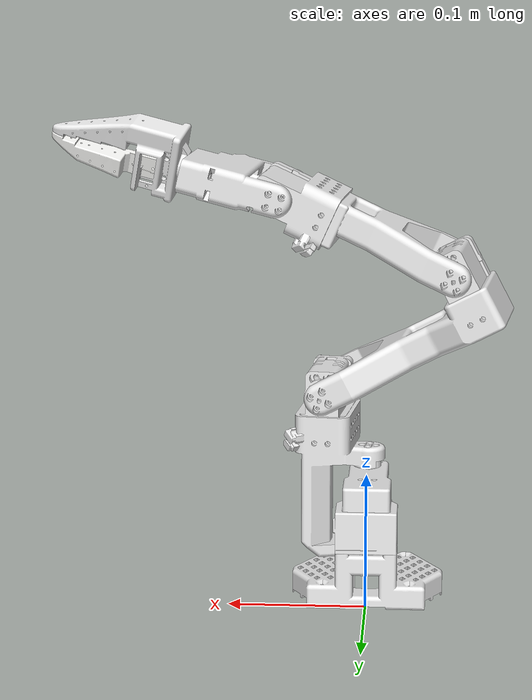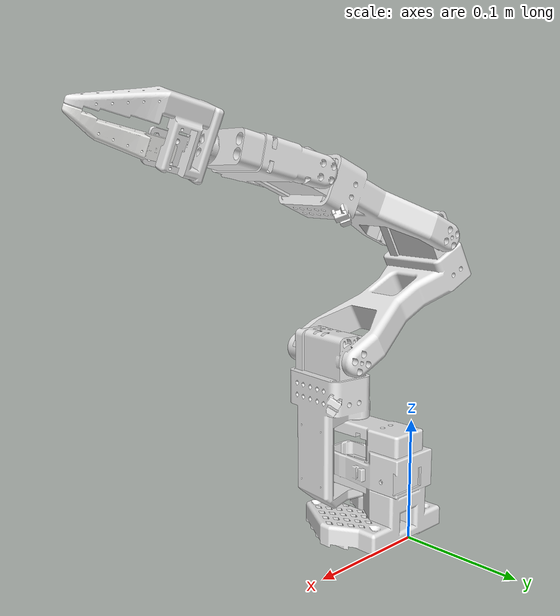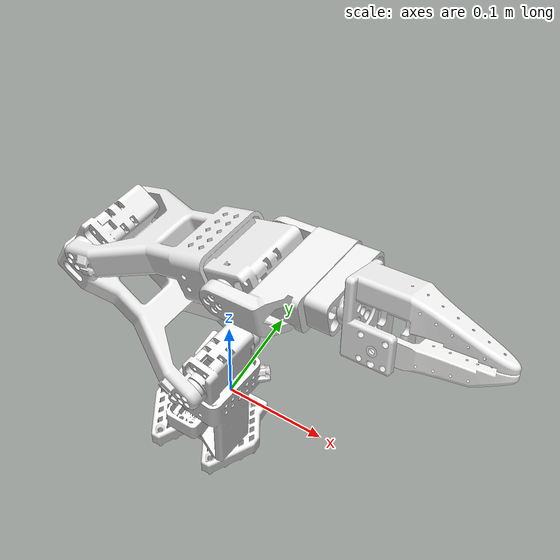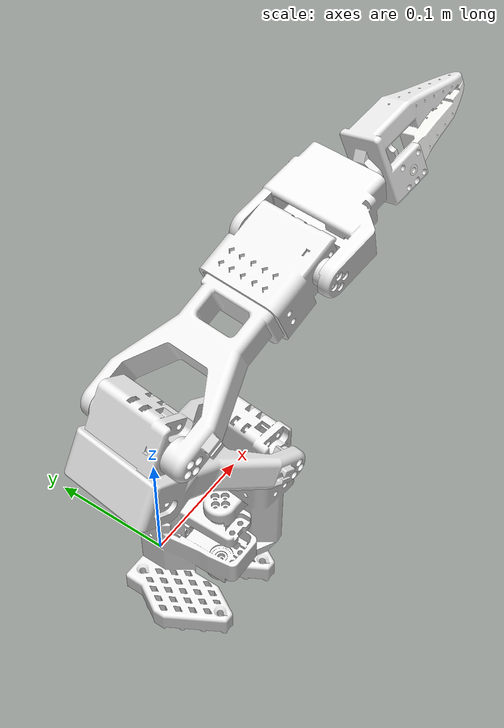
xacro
<?xml version="1.0"?>
<!--URDF generated by ONSHAPE BY PTC INC, 1.219, converted to XACRO-->
<robot xmlns:xacro="http://www.ros.org/wiki/xacro" name="sos_101_assembly">

    <!-- Khai báo property cho tên package -->
    <xacro:property name="pkg_name" value="so101_description" />

<link name="base_link">
    <inertial>
        <mass value="0.234577" />
        <origin xyz="-4.17088e-05 0.0326872 0.0322969" rpy="0 -0 0" />
        <inertia ixx="0.000310491" ixy="2.6781e-07" ixz="-6.0248e-07" iyy="0.000247507" iyz="2.2189e-05" izz="0.000303594" />
    </inertial>
    <visual>
        <origin xyz="0 -0.0704 0.016" rpy="0 -0 0" />
        <geometry>
            <mesh filename="package://so101_description/meshes/so101/Base_Link.stl" scale="1 1 1" />
        </geometry>
        <material name="0.917647_0.917647_0.917647_0.000000_0.000000">
            <color rgba="0.917647 0.917647 0.917647 1" />
        </material>
    </visual>
    <collision>
        <origin xyz="0 -0.0704 0.016" rpy="0 -0 0" />
        <geometry>
            <mesh filename="package://so101_description/meshes/so101/Base_Link_Collision.stl" scale="1 1 1" />
        </geometry>
    </collision>
</link>

    <link name="link_2">
        <inertial>
            <mass value="0.17508" />
            <origin xyz="0.031067 0.0676521 0.00358282" rpy="0 1.44874 0" />
            <inertia ixx="0.000304182" ixy="3.31896e-06" ixz="2.0908e-06" iyy="7.07247e-05" iyz="8.49215e-07" izz="0.000293165" />
        </inertial>
        <visual>
            <origin xyz="-0.043226 -0.1014 -0.00530226" rpy="0 1.44874 0" />
            <geometry>
                <mesh filename="package://so101_description/meshes/so101/Link_2.stl" scale="1 1 1" />
            </geometry>
            <material name="0.917647_0.917647_0.917647_0.000000_0.000000">
                <color rgba="0.917647 0.917647 0.917647 1" />
            </material>
        </visual>
        <collision>
            <origin xyz="-0.043226 -0.1014 -0.00530226" rpy="0 1.44874 0" />
            <geometry>
                <mesh filename="package://so101_description/meshes/so101/Link_2_Collision.stl" scale="1 1 1" />
            </geometry>
        </collision>
    </link>

    <link name="link_3">
        <inertial>
            <mass value="0.218076" />
            <origin xyz="-0.032577 0.0512814 -0.0791874" rpy="-1.07854 -3.62462e-16 -2.48169e-16" />
            <inertia ixx="0.000438118" ixy="-2.91992e-06" ixz="2.48775e-06" iyy="0.000367616" iyz="0.000166116" izz="0.000286676" />
        </inertial>
        <visual>
            <origin xyz="-0.0319 -0.168646 0.157892" rpy="-1.07854 -3.62462e-16 -2.48169e-16" />
            <geometry>
                <mesh filename="package://so101_description/meshes/so101/Link_3.stl" scale="1 1 1" />
            </geometry>
            <material name="0.917647_0.917647_0.917647_0.000000_0.000000">
                <color rgba="0.917647 0.917647 0.917647 1" />
            </material>
        </visual>
        <collision>
            <origin xyz="-0.0319 -0.168646 0.157892" rpy="-1.07854 -3.62462e-16 -2.48169e-16" />
            <geometry>
                <mesh filename="package://so101_description/meshes/so101/Link_3_Collision.stl" scale="1 1 1" />
            </geometry>
        </collision>
    </link>

    <link name="link_4">
        <inertial>
            <mass value="0.188835" />
            <origin xyz="-0.0321198 -0.0547678 0.0660047" rpy="0.657991 -2.05616e-16 1.93952e-16" />
            <inertia ixx="0.000336984" ixy="4.36303e-06" ixz="-3.9803e-06" iyy="0.000280877" iyz="0.000149131" izz="0.000239713" />
        </inertial>
        <visual>
            <origin xyz="-0.03185 -0.20766 -0.298702" rpy="0.657991 -2.05616e-16 1.93952e-16" />
            <geometry>
                <mesh filename="package://so101_description/meshes/so101/Link_4.stl" scale="1 1 1" />
            </geometry>
            <material name="0.917647_0.917647_0.917647_0.000000_0.000000">
                <color rgba="0.917647 0.917647 0.917647 1" />
            </material>
        </visual>
        <collision>
            <origin xyz="-0.03185 -0.20766 -0.298702" rpy="0.657991 -2.05616e-16 1.93952e-16" />
            <geometry>
                <mesh filename="package://so101_description/meshes/so101/Link_4_Collision.stl" scale="1 1 1" />
            </geometry>
        </collision>
    </link>

    <link name="link_5">
        <inertial>
            <mass value="0.0644315" />
            <origin xyz="-0.0291244 -0.00699877 0.0370222" rpy="-1.3827 -8.37456e-17 6.93084e-17" />
            <inertia ixx="3.39542e-05" ixy="9.07343e-07" ixz="-5.29264e-06" iyy="7.61695e-05" iyz="4.61888e-06" izz="5.32817e-05" />
        </inertial>
        <visual>
            <origin xyz="-0.0319 -0.309133 0.289216" rpy="-1.3827 -8.37456e-17 6.93084e-17" />
            <geometry>
                <mesh filename="package://so101_description/meshes/so101/Link_5.stl" scale="1 1 1" />
            </geometry>
            <material name="0.917647_0.917647_0.917647_0.000000_0.000000">
                <color rgba="0.917647 0.917647 0.917647 1" />
            </material>
        </visual>
        <collision>
            <origin xyz="-0.0319 -0.309133 0.289216" rpy="-1.3827 -8.37456e-17 6.93084e-17" />
            <geometry>
                <mesh filename="package://so101_description/meshes/so101/Link_5_Collision.stl" scale="1 1 1" />
            </geometry>
        </collision>
    </link>

    <link name="mate_connector_1">
        <inertial>
            <mass value="1e-09" />
            <origin xyz="0 0 0" rpy="0 -0 0" />
            <inertia ixx="4e-14" ixy="0" ixz="0" iyy="4e-14" iyz="0" izz="4e-14" />
        </inertial>
    </link>

    <link name="mate_connector_2">
        <inertial>
            <mass value="1e-09" />
            <origin xyz="0 0 0" rpy="0 -0 0" />
            <inertia ixx="4e-14" ixy="0" ixz="0" iyy="4e-14" iyz="0" izz="4e-14" />
        </inertial>
    </link>

    <link name="moving_jaw_so101_v1">
        <inertial>
            <mass value="0.0073316" />
            <origin xyz="-0.00182785 -0.0358349 0.014666" rpy="0 -0 0" />
            <inertia ixx="2.97473e-06" ixy="-2.46615e-07" ixz="2.00849e-08" iyy="3.61206e-07" iyz="3.27943e-07" izz="2.9039e-06" />
        </inertial>
        <visual>
            <origin xyz="-0.0120576 -0.241611 -0.2334" rpy="0 -0 0" />
            <geometry>
                <mesh filename="package://so101_description/meshes/so101/Moving_Jaw_SO101_v1.stl" scale="1 1 1" />
            </geometry>
            <material name="0.964706_0.964706_0.952941_0.000000_0.000000">
                <color rgba="0.964706 0.964706 0.952941 1" />
            </material>
        </visual>
        <collision>
            <origin xyz="-0.0120576 -0.241611 -0.2334" rpy="0 -0 0" />
            <geometry>
                <mesh filename="package://so101_description/meshes/so101/Moving_Jaw_SO101_v1.stl" scale="1 1 1" />
            </geometry>
        </collision>
    </link>

    <link name="root" />

    <link name="wrist_roll_follower_so101_v1">
        <inertial>
            <mass value="0.0524784" />
            <origin xyz="0.00214216 -0.0327057 0.00765457" rpy="3.14159 1.29034 3.14159" />
            <inertia ixx="3.97676e-05" ixy="1.13139e-06" ixz="-2.01004e-06" iyy="1.33352e-05" iyz="3.64793e-06" izz="3.46534e-05" />
        </inertial>
        <visual>
            <origin xyz="-0.23989 -0.26822 0.0689428" rpy="3.14159 1.29034 3.14159" />
            <geometry>
                <mesh filename="package://so101_description/meshes/so101/Wrist_Roll_Follower_SO101_v1.stl" scale="1 1 1" />
            </geometry>
            <material name="0.917647_0.917647_0.917647_0.000000_0.000000">
                <color rgba="0.917647 0.917647 0.917647 1" />
            </material>
        </visual>
        <collision>
            <origin xyz="-0.23989 -0.26822 0.0689428" rpy="3.14159 1.29034 3.14159" />
            <geometry>
                <mesh filename="package://so101_description/meshes/so101/Wrist_Roll_Follower_SO101_v1.stl" scale="1 1 1" />
            </geometry>
        </collision>
    </link>

    <joint name="end_effector" type="revolute">
        <origin xyz="-0.018946 -0.0266092 -0.00724663" rpy="3.14159 1.29034 3.14159" />
        <axis xyz="0 3.88578e-16 -1" />
        <parent link="wrist_roll_follower_so101_v1" />
        <child link="moving_jaw_so101_v1" />
        <limit effort="1" velocity="1" lower="-1.0472" upper="1.06581e-14" />
    </joint>

    <joint name="fastened_1" type="fixed">
        <origin xyz="0 0 0" rpy="1.5708 0 0" />
        <parent link="root" />
        <child link="base_link" />
    </joint>

    <joint name="joint_1" type="revolute">
        <origin xyz="-6.93889e-18 0.031 0.05955" rpy="-1.82999e-16 -3.33067e-16 -4.74682e-17" />
        <axis xyz="0 1 0" />
        <parent link="base_link" />
        <child link="link_2" />
        <limit effort="1" velocity="1" lower="-3.19407" upper="0.296587" />
    </joint>

    <joint name="joint_2" type="revolute">
        <origin xyz="0.0341073 0.11745 -0.0279554" rpy="-8.40441e-14 1.44874 -8.04183e-14" />
        <axis xyz="-1 -1.78756e-16 -3.88578e-16" />
        <parent link="link_2" />
        <child link="link_3" />
        <limit effort="1" velocity="1" lower="-2.64934" upper="0.492256" />
    </joint>

    <joint name="joint_3" type="revolute">
        <origin xyz="-5e-05 0.0917043 -0.0962012" rpy="-1.07854 1.75227e-15 4.93588e-15" />
        <axis xyz="-1 2.04157e-16 -3.8686e-16" />
        <parent link="link_3" />
        <child link="link_4" />
        <limit effort="1" velocity="1" lower="-0.738273" upper="2.05425" />
    </joint>

    <joint name="joint_4" type="revolute">
        <origin xyz="-5e-05 -0.0897624 0.107881" rpy="0.657991 3.13488e-15 -1.60269e-15" />
        <axis xyz="-1 -8.52493e-17 0" />
        <parent link="link_4" />
        <child link="link_5" />
        <limit effort="1" velocity="1" lower="-1.3827" upper="1.40983" />
    </joint>

    <joint name="joint_5" type="continuous">
        <origin xyz="-0.03205 -0.0137812 0.0724001" rpy="-1.3827 1.9657e-14 -4.08562e-15" />
        <axis xyz="1.78756e-16 1 3.88578e-16" />
        <parent link="link_5" />
        <child link="wrist_roll_follower_so101_v1" />
    </joint>

    <joint name="mate_connector_1" type="fixed">
        <origin xyz="0 0 0" rpy="-3.14159 5.55112e-17 -6.93889e-18" />
        <axis xyz="0 0 1" />
        <parent link="moving_jaw_so101_v1" />
        <child link="mate_connector_1" />
    </joint>

    <joint name="mate_connector_2" type="fixed">
        <origin xyz="-0.018946 -0.0266092 -0.00724663" rpy="-1.81334e-15 1.29034 3.14159" />
        <axis xyz="0 0 1" />
        <parent link="wrist_roll_follower_so101_v1" />
        <child link="mate_connector_2" />
    </joint>

</robot>
